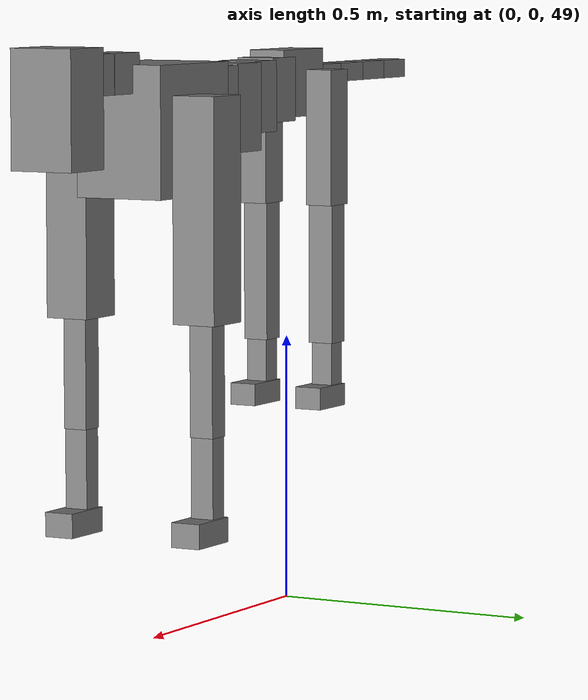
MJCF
<mujoco model="dog">

    <default>
        <joint armature="0.02" stiffness="1" damping="0.2" limited="true"/>
        <geom condim="3" friction="1 0.05 0.05" margin="0.01"/>
        <motor ctrllimited="true" ctrlrange="-1.0 1.0" forcelimited="true" gear="50"/>
    </default>

    <compiler inertiafromgeom="true" angle="radian"/>

    <option timestep="0.016" iterations="50" tolerance="1e-10" solver="Newton" jacobian="dense" cone="pyramidal"/>

    <size nconmax="20000" njmax="60000" nstack="5000000"/>
    <visual>
        <map force="0.1" zfar="30"/>
        <rgba haze="0.15 0.25 0.35 1"/>
        <quality shadowsize="2048"/>
        <global offwidth="800" offheight="800"/>
    </visual>

    <asset>
        <texture type="skybox" builtin="gradient" rgb1="0.3 0.5 0.7" rgb2="0 0 0" width="512" height="512"/>
        <texture name="texplane" type="2d" builtin="checker" rgb1=".2 .3 .4" rgb2=".1 0.15 0.2" width="512" height="512"
                 mark="cross" markrgb=".8 .8 .8"/>
        <texture name="texgeom" type="cube" builtin="flat" mark="cross" width="127" height="1278" rgb1="0.8 0.6 0.4"
                 rgb2="0.8 0.6 0.4" markrgb="1 1 1" random="0.01"/>

        <material name="matplane" reflectance="0.3" texture="texplane" texrepeat="1 1" texuniform="true"/>
        <material name="matgeom" texture="texgeom" texuniform="true" rgba="0.8 0.6 .4 1"/>
    </asset>

    <worldbody>
        <geom name="floor" pos="0 0 0" size="0 0 .25" type="plane" material="matplane" condim="3"/>

        <light directional="false" diffuse=".2 .2 .2" specular="0 0 0" pos="0 0 5" dir="0 0 -1" castshadow="false"/>
        <light mode="targetbodycom" target="torso" directional="false" diffuse=".8 .8 .8" specular="0.3 0.3 0.3"
               pos="0 0 4.0" dir="0 0 -1"/>

        <body name="root" pos="0 0 50">
            <freejoint name="root_1"/>
            <geom type="box" pos="0 0 -0.02" size="0.0774  0.0358  0.063" density="2030"/>

            <body name="spine1" pos="0.054 0 0">
                <joint name="spine1_y" axis="0 1 0" range="0 0.7" limited="true"/>
                <geom type="box" pos="0.02375 0 -0.03" size="0.04375  0.0375  0.05985" density="2030"/>

                <body name="spine2" pos="0.0612 0 0">
                    <joint name="spine2_y" axis="0 1 0" range="-0.15 0.15" limited="true"/>
                    <geom type="box" pos="0.03555  0  -0.04" size="0.04055  0.039  0.06615" density="2030"/>

                    <body name="spine3" pos="0.0730 0 0">
                        <joint name="spine3_y" axis="0 1 0" range="-0.15 0.15" limited="true"/>
                        <geom type="box" pos="0.03555  0  -0.057" size="0.04555  0.0445  0.081" density="2030"/>

                        <body name="spine4" pos="0.0780 0 0">
                            <joint name="spine4_y" axis="0 1 0" range="-0.15 0.15" limited="true"/>
                            <geom type="box" pos="0.05265  0  -0.07" size="0.05265  0.045  0.09135" density="2030"/>

                            <body name="torso" pos="0.1082 0 0">
                                <joint name="torso_y" axis="0 1 0" range="-0.15 0.15" limited="true"/>
                                <geom type="box" pos="0.11925  0  -0.085" size="0.11925  0.085  0.11745"
                                      density="2030"/>

                                <body name="neck1" pos="0.2160  0   0.0180">
                                    <joint name="neck1_y" axis="0 1 0" range="-1.2  -1" limited="true"/>
                                    <geom type="box" pos="0.0423  0  0" size="0.0423  0.03  0.036" density="2325"/>

                                    <body name="neck2" pos="0.0853  0  0">
                                        <joint name="neck2_y" axis="0 1 0" range="0.1  0" limited="true"/>
                                        <geom type="box" pos="0.0423  0  0" size="0.0423  0.03  0.036" density="2325"/>

                                        <body name="head" pos="0.0853  0  0">
                                            <joint name="head_y" axis="0 1 0" range="-0.3  -0.2" limited="true"/>
                                            <geom type="box" pos="0.0531  0  -0.055" size="0.0531  0.06  0.1044"
                                                  density="4030"/>

                                        </body>
                                    </body>
                                </body>

                                <body name="front_shoulder" pos="0.156  0   -0.0480">
                                    <joint name="front_shoulder_y" axis="0 1 0" range="-1 1.5" limited="true"/>
                                    <geom type="box" pos="0 0.13 -0.1739" size="0.0481  0.0412  0.2005" density="1158"/>
                                    <geom type="box" pos="0 -0.13 -0.1739" size="0.0481  0.0412  0.2005"
                                          density="1158"/>

                                    <body name="front_elbow" pos="0  0  -0.3477">
                                        <joint name="front_elbow_y" axis="0 1 0" range="-2 0" limited="true"/>
                                        <geom type="box" pos="0 0.13 -0.1140" size="0.0221  0.0226  0.1140"
                                              density="1081"/>
                                        <geom type="box" pos="0 -0.13 -0.1140" size="0.0221  0.0226  0.1140"
                                              density="1081"/>

                                        <body name="front_wrist" pos="0  0  -0.2281">
                                            <joint name="front_wrist_y" axis="0 1 0" range="-0.2 0" limited="true"/>
                                            <geom type="box" pos="0 0.13 -0.0794" size="0.0197  0.0219  0.0926"
                                                  density="1664"/>
                                            <geom type="box" pos="0 -0.13 -0.0794" size="0.0197  0.0219  0.0926"
                                                  density="1664"/>

                                            <body name="front_finger_end" pos="0  0  -0.1589">
                                                <joint name="front_finger_y" axis="0 1 0" range="-0.4 1"
                                                       limited="true"/>
                                                <geom type="box" pos="0.0280  0.13  -0.0072"
                                                      size="0.0514  0.0280  0.0222" density="1515"/>
                                                <geom type="box" pos="0.0280  -0.13  -0.0072"
                                                      size="0.0514  0.0280  0.0222" density="1515"/>

                                            </body>

                                        </body>
                                    </body>
                                </body>

                            </body>
                        </body>
                    </body>
                </body>
            </body>

            <body name="back_hip" pos="-0.03 0 -0.018">
                <joint name="back_hip_y" axis="0 1 0" range="-1.5 0.3" limited="true"/>
                <geom type="box" pos="0 0.07 -0.1045" size="0.0337  0.0264  0.1273" density="1154"/>
                <geom type="box" pos="0 -0.07 -0.1045" size="0.0337  0.0264  0.1273" density="1154"/>

                <body name="back_knee" pos="0  0  -0.2090">
                    <joint name="back_knee_y" axis="0 1 0" range="0 2.8" limited="true"/>
                    <geom type="box" pos="0 0.07 -0.1339" size="0.0248  0.0244  0.1495" density="1227"/>
                    <geom type="box" pos="0 -0.07 -0.1339" size="0.0248  0.0244  0.1495" density="1227"/>

                    <body name="back_ankle" pos="0  0  -0.2679">
                        <joint name="back_ankle_y" axis="0 1 0" range="-2.2 0" limited="true"/>
                        <geom type="box" pos="0 0.07 -0.0550" size="0.0207  0.0207  0.0663" density="1284"/>
                        <geom type="box" pos="0 -0.07 -0.0550" size="0.0207  0.0207  0.0663" density="1284"/>

                        <body name="back_toe_end" pos="0  0  -0.1100">
                            <joint name="back_toe_y" axis="0 1 0" range="-0.4 1" limited="true"/>
                            <geom type="box" pos="0.0266  0.07  -0.0057" size="0.0488  0.0266  0.0207" density="1515"/>
                            <geom type="box" pos="0.0266  -0.07  -0.0057" size="0.0488  0.0266  0.0207" density="1515"/>

                        </body>
                    </body>
                </body>
            </body>

            <body name="tail1" pos="-0.074 0 -0.006">
                <joint name="tail1_y" axis="0 1 0" range="-0.2 0.2" limited="true"/>
                <geom type="box" pos="-0.0536  0  0" size="0.045  0.025  0.0175" density="1587"/>

                <body name="tail2" pos="-0.09 0 0">
                    <joint name="tail2_y" axis="0 1 0" range="-0.2 0.2" limited="true"/>
                    <geom type="box" pos="-0.0536  0  0" size="0.045  0.025  0.0175" density="1587"/>

                    <body name="tail3" pos="-0.09 0 0">
                        <joint name="tail3_y" axis="0 1 0" range="-0.2 0.2" limited="true"/>
                        <geom type="box" pos="-0.0536  0  0" size="0.045  0.025  0.0175" density="1587"/>

                        <body name="tail4" pos="-0.09 0 0">
                            <joint name="tail4_y" axis="0 1 0" range="-0.2 0.2" limited="true"/>
                            <geom type="box" pos="-0.0536  0  0" size="0.045  0.025  0.0175" density="1587"/>

                        </body>
                    </body>
                </body>
            </body>
        </body>
    </worldbody>

    <actuator>
        <motor joint="spine1_y" forcerange="-150 150     "/>
        <motor joint="spine2_y" forcerange="-150 150     "/>
        <motor joint="spine3_y" forcerange="-150 150     "/>
        <motor joint="spine4_y" forcerange="-150 150     "/>
        <motor joint="torso_y" forcerange="-150 150     "/>
        <motor joint="neck1_y" forcerange="-100 100       "/>
        <motor joint="neck2_y" forcerange="-100 100       "/>
        <motor joint="head_y" forcerange="-150 150       "/>
        <motor joint="front_shoulder_y" forcerange="-178.34 196.01"/>
        <motor joint="front_elbow_y" forcerange="-106.30 158.23"/>
        <motor joint="front_wrist_y" forcerange="-99.58 75.22"/>
        <motor joint="front_finger_y" forcerange="-48.25 61.34"/>
        <motor joint="back_hip_y" forcerange="-343.66 208.28"/>
        <motor joint="back_knee_y" forcerange="-319.64 235.84"/>
        <motor joint="back_angle_y" forcerange="-99.50 131.43"/>
        <motor joint="back_toe_y" forcerange="-90.48 42.61"/>
        <motor joint="tail1_y" forcerange="-50 50     "/>
        <motor joint="tail2_y" forcerange="-50 50     "/>
        <motor joint="tail3_y" forcerange="-50 50     "/>
        <motor joint="tail4_y" forcerange="-50 50     "/>
    </actuator>
</mujoco>
